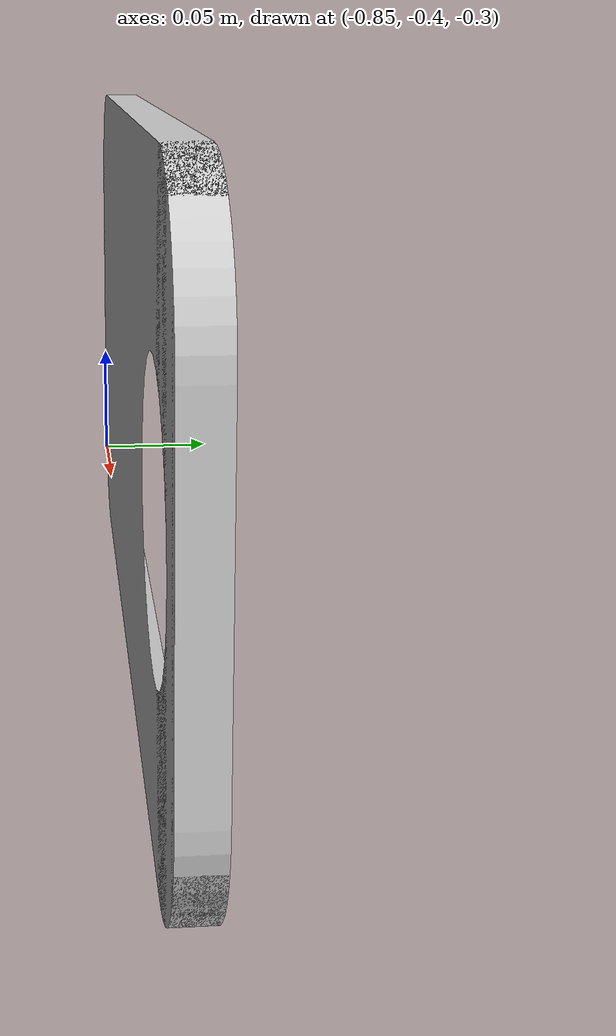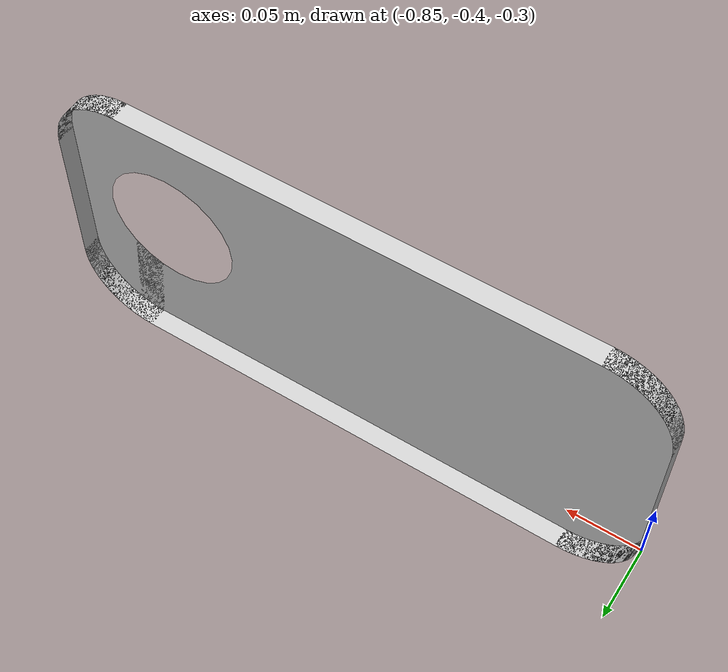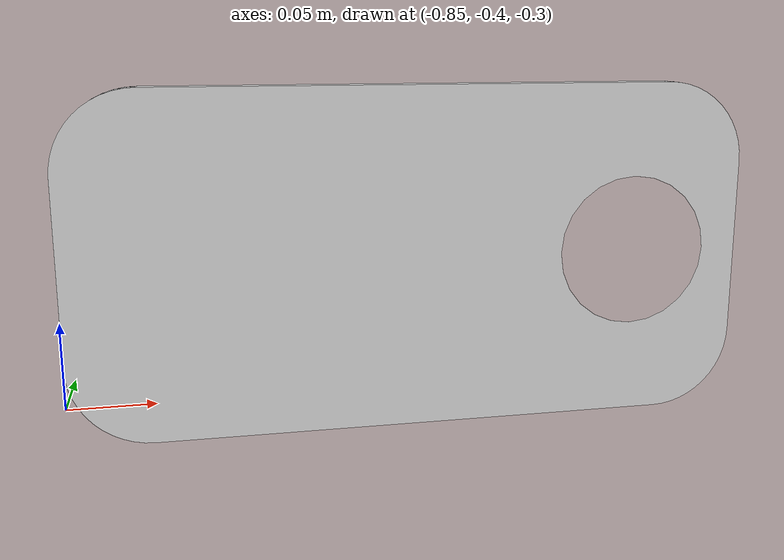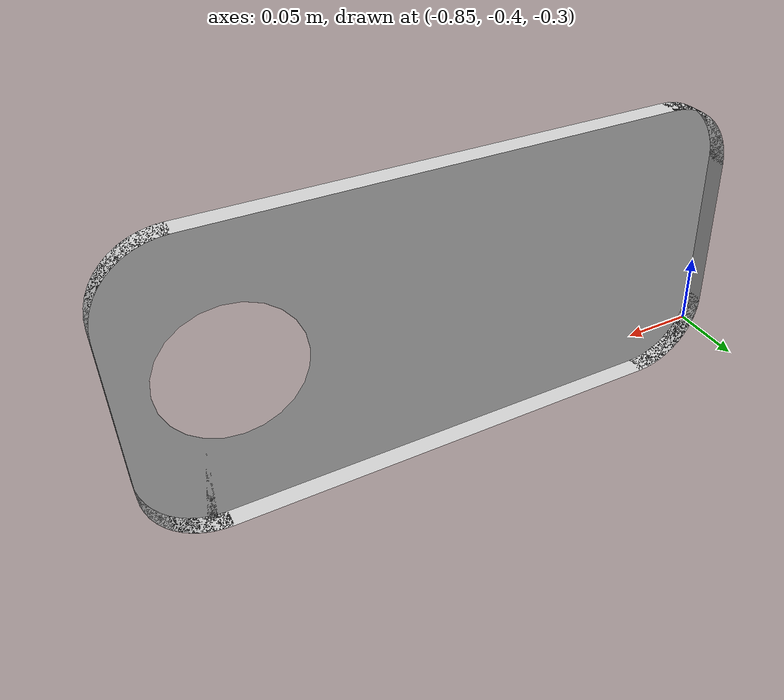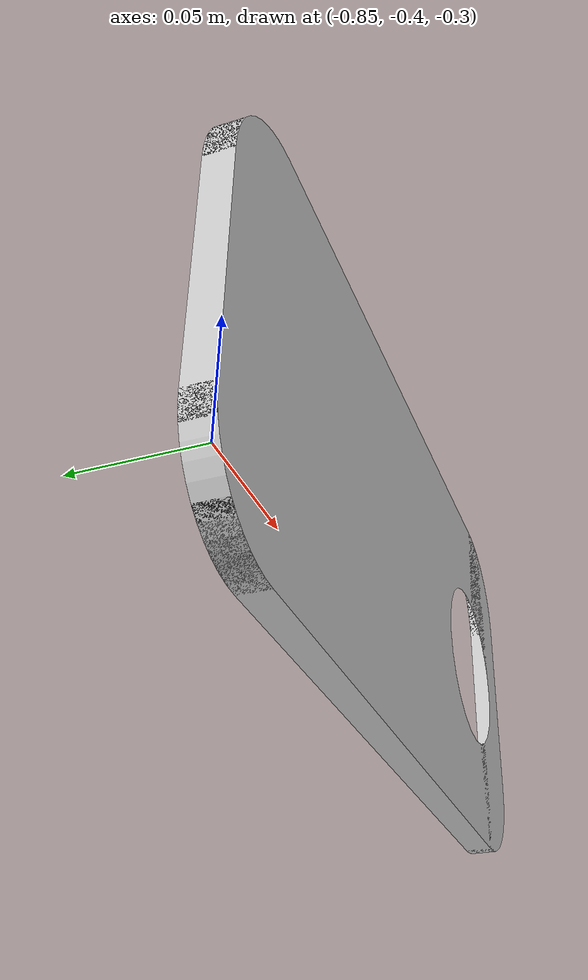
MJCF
<mujoco model="original-89">
  <default>
    <default class="visual">
      <geom group="2" type="mesh" contype="0" conaffinity="0"/>
    </default>
    <default class="collision">
      <geom group="3" type="mesh"/>
    </default>
  </default>
  <asset>
    <material name="material_0_0" specular="0.06666666666666667" shininess="0.03" rgba="0.13333333333333333 0.13333333333333333 0.13333333333333333 1"/>
    <material name="material_1_0" specular="0.06666666666666667" shininess="0.03" rgba="0.8 0.8 0.8 1"/>
    <mesh file="original-89_0.obj"/>
    <mesh file="original-89_1.obj"/>
  </asset>
  <worldbody>
    <body name="original-89">
      <geom mesh="original-89_0" material="material_1_0" class="visual"/>
      <geom mesh="original-89_1" material="material_0_0" class="visual"/>
      <geom mesh="original-89_0" class="collision"/>
      <geom mesh="original-89_1" class="collision"/>
    </body>
  </worldbody>
</mujoco>
